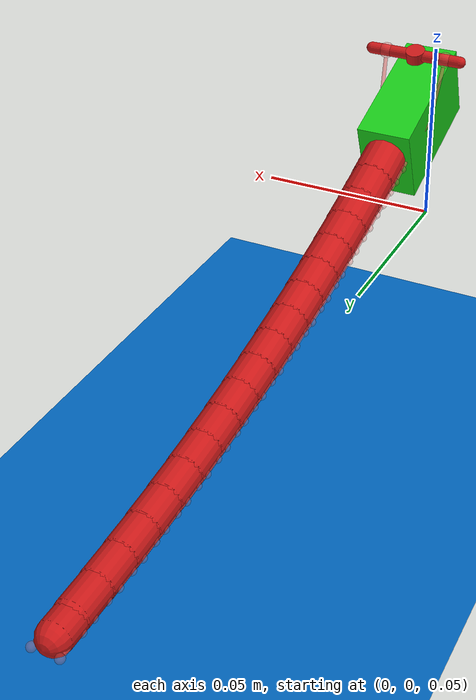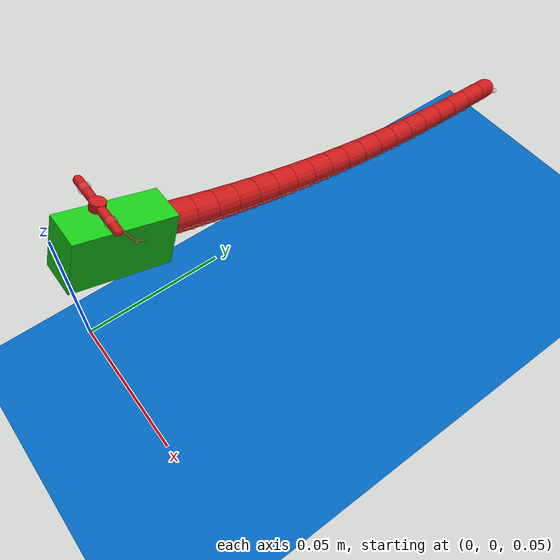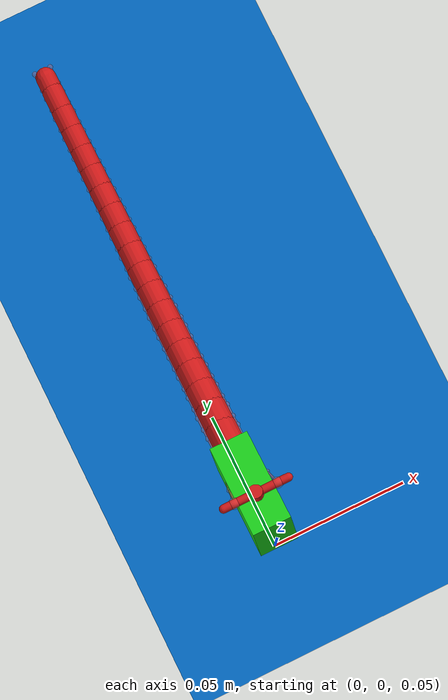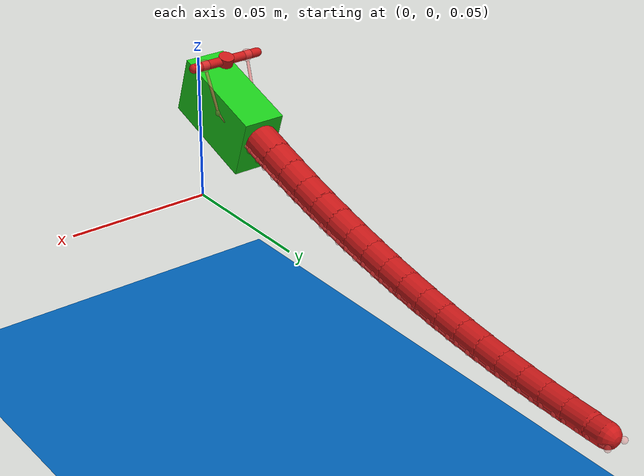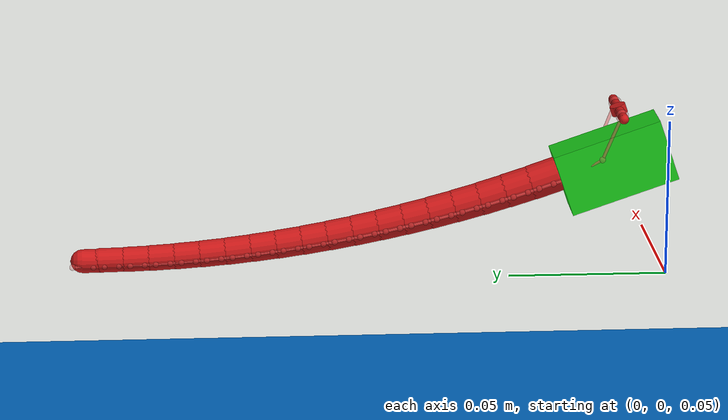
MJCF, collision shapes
<mujoco>

    <include file="basic_scene.xml" />

    <include file="tail_assets/tail_stl_assets.xml"/>

    <worldbody>
        <light diffuse=".5 .5 .5" pos="0 0 3" dir="0 0 -1"/>
        <geom type="plane" size="0 0 0.03" material="matplane"/>
        <camera name="body_cam" mode="fixed" pos="0.3 -0.01 0.1" euler="90 90 0"/>
        <body pos="0 0 0.1">
            <include file="tail_assets/tail.xml"/>
        </body>
    </worldbody>

    <include file="tail_assets/tail_tendon.xml"/>

    <include file="tail_assets/tail_sensor_actuator.xml"/>
</mujoco>

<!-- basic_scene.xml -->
<mujoco>
    <compiler angle="degree"/>

    <asset>
        <texture type="skybox" builtin="gradient" rgb1="1 1 1" rgb2=".6 .8 1" width="256" height="256"/>
        <texture name="texplane" type="2d" builtin="checker" rgb1=".2 .3 .4" rgb2=".1 0.15 0.2" width="512" height="512" mark="cross" markrgb=".8 .8 .8"/>

        <material name="matplane" reflectance="0" texture="texplane" texrepeat="2 2" texuniform="true"/>
    </asset>

    <option timestep="0.002" o_solimp="0.9 0.95 0.001 0.1 2" o_solref="0.008 2" cone="elliptic"
        impratio="3.0" noslip_iterations="5" noslip_tolerance="1e-8">
        <flag override="enable"/>
    </option>

    <default>
        <geom type="box" rgba="0 0.4 0.74 1.0"/>
    </default>
</mujoco>

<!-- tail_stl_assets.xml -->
<mujoco>
    <asset>
        <mesh name="main_tail" refquat="1 0 1 0" scale="0.001 0.001 0.001" file="stl-meshes/tail/tail_main.stl"/>
        <mesh name="t1_tail" refquat="1 0 1 0" scale="0.001 0.001 0.001" file="stl-meshes/tail/t1.stl"/>
        <mesh name="t2_tail" refquat="1 0 1 0" scale="0.001 0.001 0.001" file="stl-meshes/tail/t2.stl"/>
        <mesh name="t3_tail" refquat="1 0 1 0" scale="0.001 0.001 0.001" file="stl-meshes/tail/t3.stl"/>
        <mesh name="t4_tail" refquat="1 0 1 0" scale="0.001 0.001 0.001" file="stl-meshes/tail/t4.stl"/>
        <mesh name="t5_tail" refquat="1 0 1 0" scale="0.001 0.001 0.001" file="stl-meshes/tail/t5.stl"/>
        <mesh name="t6_tail" refquat="1 0 1 0" scale="0.001 0.001 0.001" file="stl-meshes/tail/t6.stl"/>
        <mesh name="t7_tail" refquat="1 0 1 0" scale="0.001 0.001 0.001" file="stl-meshes/tail/t7.stl"/>
        <mesh name="t8_tail" refquat="1 0 1 0" scale="0.001 0.001 0.001" file="stl-meshes/tail/t8.stl"/>
        <mesh name="t9_tail" refquat="1 0 1 0" scale="0.001 0.001 0.001" file="stl-meshes/tail/t9.stl"/>
        <mesh name="t10_tail" refquat="1 0 1 0" scale="0.001 0.001 0.001" file="stl-meshes/tail/t10.stl"/>
        <mesh name="t11_tail" refquat="1 0 1 0" scale="0.001 0.001 0.001" file="stl-meshes/tail/t11.stl"/>
        <mesh name="t12_tail" refquat="1 0 1 0" scale="0.001 0.001 0.001" file="stl-meshes/tail/t12.stl"/>
        <mesh name="t13_tail" refquat="1 0 1 0" scale="0.001 0.001 0.001" file="stl-meshes/tail/t13.stl"/>
        <mesh name="t14_tail" refquat="1 0 1 0" scale="0.001 0.001 0.001" file="stl-meshes/tail/t14.stl"/>
        <mesh name="t15_tail" refquat="1 0 1 0" scale="0.001 0.001 0.001" file="stl-meshes/tail/t15.stl"/>
        <mesh name="t16_tail" refquat="1 0 1 0" scale="0.001 0.001 0.001" file="stl-meshes/tail/t16.stl"/>
        <mesh name="t17_tail" refquat="1 0 1 0" scale="0.001 0.001 0.001" file="stl-meshes/tail/t17.stl"/>
        <mesh name="t18_tail" refquat="1 0 1 0" scale="0.001 0.001 0.001" file="stl-meshes/tail/t18.stl"/>
        <mesh name="t19_tail" refquat="1 0 1 0" scale="0.001 0.001 0.001" file="stl-meshes/tail/t19.stl"/>
        <mesh name="servo_tail" refquat="1 0 1 0" scale="0.001 0.001 0.001" file="stl-meshes/tail/servo_horn_tail.stl"/>
    </asset>
</mujoco>

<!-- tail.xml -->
<mujoco>
    <body name="tail">
        <geom name="tail_main" type="box" mass="0.009" euler="-19 0 0" size="0.007 0.0175 0.01" pos="0 0.0175 -0.013" rgba=".1 .8 .1 0"/>
        <geom name="visual_tail_main" type="mesh" mesh="main_tail" mass="0" contype="0" euler="90 90 0" conaffinity="0" rgba=".95 .95 .95 1"/>
        <site name="st_1" pos="0.007 0.022 -0.01" size="0.001" rgba="1 .4 .4 0.3"/>
        <site name="st_2" pos="-0.007 0.022 -0.01" size="0.001" rgba="1 .4 .4 0.3"/>
        <site name="st_3" pos="0.0055 0.0332 -0.0168" size="0.001" rgba="1 .4 .4 0.3"/>
        <site name="st_4" pos="-0.0055 0.0332 -0.0168" size="0.001" rgba="1 .4 .4 0.3"/>

        <body name="tail_t1" pos="0 0.03525 -0.0174">
            <geom name="tail_t1" type="capsule" mass="0.0005" fromto="0 0 0.001 0 0.008 -0.00175" size="0.0055" rgba=".8 .1 .1 0"/>
            <geom name="tail_visual_t1" type="mesh" mesh="t1_tail" mass="0" contype="0" euler="90 90 0" conaffinity="0" rgba=".95 .95 .95 1"/>
            <joint name="tail_t1" type="hinge" axis="0 0 1" damping="0.01" stiffness="1.2" armature="0.00065" limited="true" range="-90 90" ref="0"/>
            <site name="st_5" pos="0.0055 0.00175 -0.0006" size="0.001" rgba="1 .4 .4 0.3"/>
            <site name="st_6" pos="-0.0055 0.00175 -0.0006" size="0.001" rgba="1 .4 .4 0.3"/>
            <site name="st_7" pos="0.0055 0.00625 -0.0021" size="0.001" rgba="1 .4 .4 0.3"/>
            <site name="st_8" pos="-0.0055 0.00625 -0.0021" size="0.001" rgba="1 .4 .4 0.3"/>

            <body name="tail_t2" pos="0 0.008 -0.00275">
                <geom name="tail_t2" type="capsule" mass="0.0005" fromto="0 0 0.001 0 0.008 -0.00155" size="0.0054" rgba=".8 .1 .1 0"/>
                <geom name="tail_visual_t2" type="mesh" mesh="t2_tail" mass="0" contype="0" euler="90 90 0" conaffinity="0" rgba=".95 .95 .95 1"/>
                <joint name="tail_t2" type="hinge" axis="0 0 1" damping="0.01" stiffness="1.2" armature="0.00065" limited="true" range="-90 90" ref="0"/>
                <site name="st_9" pos="0.00545 0.00175 -0.00055" size="0.001" rgba="1 .4 .4 0.3"/>
                <site name="st_10" pos="-0.00545 0.00175 -0.00055" size="0.001" rgba="1 .4 .4 0.3"/>
                <site name="st_11" pos="0.00545 0.00625 -0.00199" size="0.001" rgba="1 .4 .4 0.3"/>
                <site name="st_12" pos="-0.00545 0.00625 -0.00199" size="0.001" rgba="1 .4 .4 0.3"/>

                <body name="tail_t3" pos="0 0.008 -0.00255">
                    <geom name="tail_t3" type="capsule" mass="0.0005" fromto="0 0 0.001 0 0.008 -0.00145" size="0.0053" rgba=".8 .1 .1 0"/>
                    <geom name="tail_visual_t3" type="mesh" mesh="t3_tail" mass="0" contype="0" euler="90 90 0" conaffinity="0" rgba=".95 .95 .95 1"/>
                    <joint name="tail_t3" type="hinge" axis="0 0 1" damping="0.01" stiffness="1.2" armature="0.00065" limited="true" range="-90 90" ref="0"/>
                    <site name="st_13" pos="0.0052 0.00175 -0.00053" size="0.001" rgba="1 .4 .4 0.3"/>
                    <site name="st_14" pos="-0.0052 0.00175 -0.00053" size="0.001" rgba="1 .4 .4 0.3"/>
                    <site name="st_15" pos="0.0052 0.00625 -0.00191" size="0.001" rgba="1 .4 .4 0.3"/>
                    <site name="st_16" pos="-0.0052 0.00625 -0.00191" size="0.001" rgba="1 .4 .4 0.3"/>

                    <body name="tail_t4" pos="0 0.008 -0.00245">
                        <geom name="tail_t4" type="capsule" mass="0.0005" fromto="0 0 0.001 0 0.008 -0.00125" size="0.0052" rgba=".8 .1 .1 0"/>
                        <geom name="tail_visual_t4" type="mesh" mesh="t4_tail" mass="0" contype="0" euler="90 90 0" conaffinity="0" rgba=".95 .95 .95 1"/>
                        <joint name="tail_t4" type="hinge" axis="0 0 1" damping="0.01" stiffness="1.2" armature="0.00065" limited="true" range="-90 90" ref="0"/>
                        <site name="st_17" pos="0.00505 0.00175 -0.00049" size="0.001" rgba="1 .4 .4 0.3"/>
                        <site name="st_18" pos="-0.00505 0.00175 -0.00049" size="0.001" rgba="1 .4 .4 0.3"/>
                        <site name="st_19" pos="0.00505 0.00625 -0.00175" size="0.001" rgba="1 .4 .4 0.3"/>
                        <site name="st_20" pos="-0.00505 0.00625 -0.00175" size="0.001" rgba="1 .4 .4 0.3"/>

                        <body name="tail_t5" pos="0 0.008 -0.00225">
                            <geom name="tail_t5" type="capsule" mass="0.0005" fromto="0 0 0.001 0 0.008 -0.0011" size="0.0051" rgba=".8 .1 .1 0"/>
                            <geom name="tail_visual_t5" type="mesh" mesh="t5_tail" mass="0" contype="0" euler="90 90 0" conaffinity="0" rgba=".95 .95 .95 1"/>
                            <joint name="tail_t5" type="hinge" axis="0 0 1" damping="0.01" stiffness="1.2" armature="0.00065" limited="true" range="-90 90" ref="0"/>
                            <site name="st_21" pos="0.00495 0.00175 -0.00046" size="0.001" rgba="1 .4 .4 0.3"/>
                            <site name="st_22" pos="-0.00495 0.00175 -0.00046" size="0.001" rgba="1 .4 .4 0.3"/>
                            <site name="st_23" pos="0.00495 0.00625 -0.00164" size="0.001" rgba="1 .4 .4 0.3"/>
                            <site name="st_24" pos="-0.00495 0.00625 -0.00164" size="0.001" rgba="1 .4 .4 0.3"/>

                            <body name="tail_t6" pos="0 0.008 -0.0021">
                                <geom name="tail_t6" type="capsule" mass="0.0005" fromto="0 0 0.001 0 0.008 -0.00095" size="0.005" rgba=".8 .1 .1 0"/>
                                <geom name="tail_visual_t6" type="mesh" mesh="t6_tail" mass="0" contype="0" euler="90 90 0" conaffinity="0" rgba=".95 .95 .95 1"/>
                                <joint name="tail_t6" type="hinge" axis="0 0 1" damping="0.01" stiffness="1.2" armature="0.00065" limited="true" range="-90 90" ref="0"/>
                                <site name="st_25" pos="0.0049 0.00175 -0.00043" size="0.001" rgba="1 .4 .4 0.3"/>
                                <site name="st_26" pos="-0.0049 0.00175 -0.00043" size="0.001" rgba="1 .4 .4 0.3"/>
                                <site name="st_27" pos="0.0049 0.00625 -0.00152" size="0.001" rgba="1 .4 .4 0.3"/>
                                <site name="st_28" pos="-0.0049 0.00625 -0.00152" size="0.001" rgba="1 .4 .4 0.3"/>

                                <body name="tail_t7" pos="0 0.008 -0.00195">
                                    <geom name="tail_t7" type="capsule" mass="0.0005" fromto="0 0 0.001 0 0.008 -0.0008" size="0.0049" rgba=".8 .1 .1 0"/>
                                    <geom name="tail_visual_t7" type="mesh" mesh="t7_tail" mass="0" contype="0" euler="90 90 0" conaffinity="0" rgba=".95 .95 .95 1"/>
                                    <joint name="tail_t7" type="hinge" axis="0 0 1" damping="0.01" stiffness="1.2" armature="0.00065" limited="true" range="-90 90" ref="0"/>
                                    <site name="st_29" pos="0.0048 0.00175 -0.00039" size="0.001" rgba="1 .4 .4 0.3"/>
                                    <site name="st_30" pos="-0.0048 0.00175 -0.00039" size="0.001" rgba="1 .4 .4 0.3"/>
                                    <site name="st_31" pos="0.0048 0.00625 -0.00141" size="0.001" rgba="1 .4 .4 0.3"/>
                                    <site name="st_32" pos="-0.0048 0.00625 -0.00141" size="0.001" rgba="1 .4 .4 0.3"/>

                                    <body name="tail_t8" pos="0 0.008 -0.0018">
                                        <geom name="tail_t8" type="capsule" mass="0.0005" fromto="0 0 0.001 0 0.008 -0.00065" size="0.0048" rgba=".8 .1 .1 0"/>
                                        <geom name="tail_visual_t8" type="mesh" mesh="t8_tail" mass="0" contype="0" euler="90 90 0" conaffinity="0" rgba=".95 .95 .95 1"/>
                                        <joint name="tail_t8" type="hinge" axis="0 0 1" damping="0.01" stiffness="1.2" armature="0.00065" limited="true" range="-90 90" ref="0"/>
                                        <site name="st_33" pos="0.0046 0.00175 -0.00036" size="0.001" rgba="1 .4 .4 0.3"/>
                                        <site name="st_34" pos="-0.0046 0.00175 -0.00036" size="0.001" rgba="1 .4 .4 0.3"/>
                                        <site name="st_35" pos="0.0046 0.00625 -0.00129" size="0.001" rgba="1 .4 .4 0.3"/>
                                        <site name="st_36" pos="-0.0046 0.00625 -0.00129" size="0.001" rgba="1 .4 .4 0.3"/>

                                        <body name="tail_t9" pos="0 0.008 -0.00165">
                                            <geom name="tail_t9" type="capsule" mass="0.0005" fromto="0 0 0.001 0 0.008 -0.0005" size="0.0047" rgba=".8 .1 .1 0"/>
                                            <geom name="tail_visual_t9" type="mesh" mesh="t9_tail" mass="0" contype="0" euler="90 90 0" conaffinity="0" rgba=".95 .95 .95 1"/>
                                            <joint name="tail_t9" type="hinge" axis="0 0 1" damping="0.01" stiffness="1.2" armature="0.00065" limited="true" range="-90 90" ref="0"/>
                                            <site name="st_37" pos="0.0044 0.00175 -0.00033" size="0.001" rgba="1 .4 .4 0.3"/>
                                            <site name="st_38" pos="-0.0044 0.00175 -0.00033" size="0.001" rgba="1 .4 .4 0.3"/>
                                            <site name="st_39" pos="0.0044 0.00625 -0.00117" size="0.001" rgba="1 .4 .4 0.3"/>
                                            <site name="st_40" pos="-0.0044 0.00625 -0.00117" size="0.001" rgba="1 .4 .4 0.3"/>

                                            <body name="tail_t10" pos="0 0.008 -0.0015">
                                                <geom name="tail_t10" type="capsule" mass="0.0005" fromto="0 0 0.001 0 0.008 -0.00035" size="0.0046" rgba=".8 .1 .1 0"/>
                                                <geom name="tail_visual_t10" type="mesh" mesh="t10_tail" mass="0" contype="0" euler="90 90 0" conaffinity="0" rgba=".95 .95 .95 1"/>
                                                <joint name="tail_t10" type="hinge" axis="0 0 1" damping="0.01" stiffness="1.2" armature="0.00065" limited="true" range="-90 90" ref="0"/>
                                                <site name="st_41" pos="0.0042 0.00175 -0.000295" size="0.001" rgba="1 .4 .4 0.3"/>
                                                <site name="st_42" pos="-0.0042 0.00175 -0.000295" size="0.001" rgba="1 .4 .4 0.3"/>
                                                <site name="st_43" pos="0.0042 0.00625 -0.00105" size="0.001" rgba="1 .4 .4 0.3"/>
                                                <site name="st_44" pos="-0.0042 0.00625 -0.00105" size="0.001" rgba="1 .4 .4 0.3"/>

                                                <body name="tail_t11" pos="0 0.008 -0.00135">
                                                    <geom name="tail_t11" type="capsule" mass="0.0005" fromto="0 0 0.001 0 0.008 -0.0002" size="0.0045" rgba=".8 .1 .1 0"/>
                                                    <geom name="tail_visual_t11" type="mesh" mesh="t11_tail" mass="0" contype="0" euler="90 90 0" conaffinity="0" rgba=".95 .95 .95 1"/>
                                                    <joint name="tail_t11" type="hinge" axis="0 0 1" damping="0.01" stiffness="1.2" armature="0.00065" limited="true" range="-90 90" ref="0"/>
                                                    <site name="st_45" pos="0.00405 0.00175 -0.00026" size="0.001" rgba="1 .4 .4 0.3"/>
                                                    <site name="st_46" pos="-0.00405 0.00175 -0.00026" size="0.001" rgba="1 .4 .4 0.3"/>
                                                    <site name="st_47" pos="0.00405 0.00625 -0.00094" size="0.001" rgba="1 .4 .4 0.3"/>
                                                    <site name="st_48" pos="-0.00405 0.00625 -0.00094" size="0.001" rgba="1 .4 .4 0.3"/>

                                                    <body name="tail_t12" pos="0 0.008 -0.0012">
                                                        <geom name="tail_t12" type="capsule" mass="0.0005" fromto="0 0 0.001 0 0.008 -0.00005" size="0.0044" rgba=".8 .1 .1 0"/>
                                                        <geom name="tail_visual_t12" type="mesh" mesh="t12_tail" mass="0" contype="0" euler="90 90 0" conaffinity="0" rgba=".95 .95 .95 1"/>
                                                        <joint name="tail_t12" type="hinge" axis="0 0 1" damping="0.01" stiffness="1.2" armature="0.00065" limited="true" range="-90 90" ref="0"/>
                                                        <site name="st_49" pos="0.0040 0.00175 -0.00023" size="0.001" rgba="1 .4 .4 0.3"/>
                                                        <site name="st_50" pos="-0.0040 0.00175 -0.00023" size="0.001" rgba="1 .4 .4 0.3"/>
                                                        <site name="st_51" pos="0.0040 0.00625 -0.00082" size="0.001" rgba="1 .4 .4 0.3"/>
                                                        <site name="st_52" pos="-0.0040 0.00625 -0.00082" size="0.001" rgba="1 .4 .4 0.3"/>

                                                        <body name="tail_t13" pos="0 0.008 -0.00105">
                                                            <geom name="tail_t13" type="capsule" mass="0.0005" fromto="0 0 0.001 0 0.008 0.0001" size="0.0043" rgba=".8 .1 .1 0"/>
                                                            <geom name="tail_visual_t13" type="mesh" mesh="t13_tail" mass="0" contype="0" euler="90 90 0" conaffinity="0" rgba=".95 .95 .95 1"/>
                                                            <joint name="tail_t13" type="hinge" axis="0 0 1" damping="0.01" stiffness="1.2" armature="0.00065" limited="true" range="-90 90" ref="0"/>
                                                            <site name="st_53" pos="0.0039 0.00175 -0.000196" size="0.001" rgba="1 .4 .4 0.3"/>
                                                            <site name="st_54" pos="-0.0039 0.00175 -0.000196" size="0.001" rgba="1 .4 .4 0.3"/>
                                                            <site name="st_55" pos="0.0039 0.00625 -0.00070" size="0.001" rgba="1 .4 .4 0.3"/>
                                                            <site name="st_56" pos="-0.0039 0.00625 -0.00070" size="0.001" rgba="1 .4 .4 0.3"/>

                                                            <body name="tail_t14" pos="0 0.008 -0.0009">
                                                                <geom name="tail_t14" type="capsule" mass="0.0005" fromto="0 0 0.001 0 0.008 0.00025" size="0.0042" rgba=".8 .1 .1 0"/>
                                                                <geom name="tail_visual_t14" type="mesh" mesh="t14_tail" mass="0" contype="0" euler="90 90 0" conaffinity="0" rgba=".95 .95 .95 1"/>
                                                                <joint name="tail_t14" type="hinge" axis="0 0 1" damping="0.01" stiffness="1.2" armature="0.00065" limited="true" range="-90 90" ref="0"/>
                                                                <site name="st_57" pos="0.00375 0.00175 -0.000164" size="0.001" rgba="1 .4 .4 0.3"/>
                                                                <site name="st_58" pos="-0.00375 0.00175 -0.000164" size="0.001" rgba="1 .4 .4 0.3"/>
                                                                <site name="st_59" pos="0.00375 0.00625 -0.000585" size="0.001" rgba="1 .4 .4 0.3"/>
                                                                <site name="st_60" pos="-0.00375 0.00625 -0.000585" size="0.001" rgba="1 .4 .4 0.3"/>

                                                                <body name="tail_t15" pos="0 0.008 -0.00075">
                                                                    <geom name="tail_t15" type="capsule" mass="0.0005" fromto="0 0 0.001 0 0.008 0.0004" size="0.0041" rgba=".8 .1 .1 0"/>
                                                                    <geom name="tail_visual_t15" type="mesh" mesh="t15_tail" mass="0" contype="0" euler="90 90 0" conaffinity="0" rgba=".95 .95 .95 1"/>
                                                                    <joint name="tail_t15" type="hinge" axis="0 0 1" damping="0.01" stiffness="1.2" armature="0.00065" limited="true" range="-90 90" ref="0"/>
                                                                    <site name="st_61" pos="0.0036 0.00175 -0.00013" size="0.001" rgba="1 .4 .4 0.3"/>
                                                                    <site name="st_62" pos="-0.0036 0.00175 -0.00013" size="0.001" rgba="1 .4 .4 0.3"/>
                                                                    <site name="st_63" pos="0.0036 0.00625 -0.00047" size="0.001" rgba="1 .4 .4 0.3"/>
                                                                    <site name="st_64" pos="-0.0036 0.00625 -0.00047" size="0.001" rgba="1 .4 .4 0.3"/>

                                                                    <body name="tail_t16" pos="0 0.008 -0.0006">
                                                                        <geom name="tail_t16" type="capsule" mass="0.0005" fromto="0 0 0.001 0 0.008 0.00055" size="0.004" rgba=".8 .1 .1 0"/>
                                                                        <geom name="tail_visual_t16" type="mesh" mesh="t16_tail" mass="0" contype="0" euler="90 90 0" conaffinity="0" rgba=".95 .95 .95 1"/>
                                                                        <joint name="tail_t16" type="hinge" axis="0 0 1" damping="0.01" stiffness="1.2" armature="0.00065" limited="true" range="-90 90" ref="0"/>
                                                                        <site name="st_65" pos="0.0035 0.00175 -0.0001" size="0.001" rgba="1 .4 .4 0.3"/>
                                                                        <site name="st_66" pos="-0.0035 0.00175 -0.0001" size="0.001" rgba="1 .4 .4 0.3"/>
                                                                        <site name="st_67" pos="0.0035 0.00625 -0.00035" size="0.001" rgba="1 .4 .4 0.3"/>
                                                                        <site name="st_68" pos="-0.0035 0.00625 -0.00035" size="0.001" rgba="1 .4 .4 0.3"/>

                                                                        <body name="tail_t17" pos="0 0.008 -0.00045">
                                                                            <geom name="tail_t17" type="capsule" mass="0.0005" fromto="0 0 0.001 0 0.008 0.0007" size="0.0039" rgba=".8 .1 .1 0"/>
                                                                            <geom name="tail_visual_t17" type="mesh" mesh="t17_tail" mass="0" contype="0" euler="90 90 0" conaffinity="0" rgba=".95 .95 .95 1"/>
                                                                            <joint name="tail_t17" type="hinge" axis="0 0 1" damping="0.01" stiffness="1.2" armature="0.00065" limited="true" range="-90 90" ref="0"/>
                                                                            <site name="st_69" pos="0.00335 0.00175 -0.000065" size="0.001" rgba="1 .4 .4 0.3"/>
                                                                            <site name="st_70" pos="-0.00335 0.00175 -0.000065" size="0.001" rgba="1 .4 .4 0.3"/>
                                                                            <site name="st_71" pos="0.00335 0.00625 -0.00023" size="0.001" rgba="1 .4 .4 0.3"/>
                                                                            <site name="st_72" pos="-0.00335 0.00625 -0.00023" size="0.001" rgba="1 .4 .4 0.3"/>

                                                                            <body name="tail_t18" pos="0 0.008 -0.0003">
                                                                                <geom name="tail_t18" type="capsule" mass="0.0005" fromto="0 0 0.001 0 0.008 0.00085" size="0.0038" rgba=".8 .1 .1 0"/>
                                                                                <geom name="tail_visual_t18" type="mesh" mesh="t18_tail" mass="0" contype="0" euler="90 90 0" conaffinity="0" rgba=".95 .95 .95 1"/>
                                                                                <joint name="tail_t18" type="hinge" axis="0 0 1" damping="0.01" stiffness="1.2" armature="0.00065" limited="true" range="-90 90" ref="0"/>
                                                                                <site name="st_73" pos="0.0031 0.00175 -0.000032" size="0.001" rgba="1 .4 .4 0.3"/>
                                                                                <site name="st_74" pos="-0.0031 0.00175 -0.000032" size="0.001" rgba="1 .4 .4 0.3"/>
                                                                                <site name="st_75" pos="0.0031 0.00625 -0.00012" size="0.001" rgba="1 .4 .4 0.3"/>
                                                                                <site name="st_76" pos="-0.0031 0.00625 -0.00012" size="0.001" rgba="1 .4 .4 0.3"/>

                                                                                <body name="tail_t19" pos="0 0.008 -0.0003">
                                                                                    <geom name="tail_t19" type="capsule" mass="0.0005" fromto="0 0 0.001 0 0.00525 0.001" size="0.0037" rgba=".8 .1 .1 0"/>
                                                                                    <geom name="tail_visual_t19" type="mesh" mesh="t19_tail" mass="0" contype="0" euler="90 90 0" conaffinity="0" rgba=".95 .95 .95 1"/>
                                                                                    <joint name="tail_t19" type="hinge" axis="0 0 1" damping="0.01" stiffness="1.2" armature="0.00065" limited="true" range="-90 90" ref="0"/>
                                                                                    <site name="st_77" pos="0.003 0.00175 0" size="0.001" rgba="1 .4 .4 0.3"/>
                                                                                    <site name="st_78" pos="-0.003 0.00175 0" size="0.001" rgba="1 .4 .4 0.3"/>
                                                                                    <site name="st_79" pos="0.003 0.00825 0" size="0.001" rgba="1 .4 .4 0.3"/>
                                                                                    <site name="st_80" pos="-0.003 0.00825 0" size="0.001" rgba="1 .4 .4 0.3"/>
                                                                                </body>
                                                                            </body>
                                                                        </body>
                                                                    </body>
                                                                </body>
                                                            </body>
                                                        </body>
                                                    </body>
                                                </body>
                                            </body>
                                        </body>
                                    </body>
                                </body>
                            </body>
                        </body>
                    </body>
                </body>
            </body>
        </body>

        <body name="servo_tail" pos="0 0.0152 0.001" euler="-19 0 0">
                <geom name="m1_tail" type="cylinder" mass="0.001" fromto="0 0 .002 0 0 0.005" size="0.0025" rgba=".8 .1 .1 0" />
                <geom name="m1_tail1" type="capsule" mass="0.001" fromto="0.012 0 0.0035 -0.012 0 0.0035" size="0.0015" rgba=".8 .1 .1 0" />
                <geom name="visual_servo_tail" type="mesh" mesh="servo_tail" pos="0 0 0.001" mass="0" contype="0" euler="90 90 0" conaffinity="0" rgba="1 .4 .4 1"/>
                <joint name="m1_tail" pos="0 0 0" type="hinge" axis="0 0 1" armature="0.00065" damping="0.01" limited="true" range="-180 180" ref="0"/>
                <site name="servo_tail_1" pos="0.008 0 0.0035" size="0.002" rgba="1 .4 .4 0.3"/>
                <site name="servo_tail_2" pos="-0.008 0 0.0035" size="0.002" rgba="1 .4 .4 0.3"/>
        </body>
    </body>
</mujoco>

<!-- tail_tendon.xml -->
<mujoco>
    <tendon>
        <spatial name="m1_tail_tendon1" limited="true" range="0 0.1863" width="0.0005" rgba="1 .4 .4 0.5">
            <site site="servo_tail_1"/>
            <site site="st_1"/>
            <site site="st_3"/>
            <site site="st_5"/>
            <site site="st_7"/>
            <site site="st_9"/>
            <site site="st_11"/>
            <site site="st_13"/>
            <site site="st_15"/>
            <site site="st_17"/>
            <site site="st_19"/>
            <site site="st_21"/>
            <site site="st_23"/>
            <site site="st_25"/>
            <site site="st_27"/>
            <site site="st_29"/>
            <site site="st_31"/>
            <site site="st_33"/>
            <site site="st_35"/>
            <site site="st_37"/>
            <site site="st_39"/>
            <site site="st_41"/>
            <site site="st_43"/>
            <site site="st_45"/>
            <site site="st_47"/>
            <site site="st_49"/>
            <site site="st_51"/>
            <site site="st_53"/>
            <site site="st_55"/>
            <site site="st_57"/>
            <site site="st_59"/>
            <site site="st_61"/>
            <site site="st_63"/>
            <site site="st_65"/>
            <site site="st_67"/>
            <site site="st_69"/>
            <site site="st_71"/>
            <site site="st_73"/>
            <site site="st_75"/>
            <site site="st_77"/>
            <site site="st_79"/>
        </spatial>

        <spatial name="m1_tail_tendon2" limited="true" range="0 0.1863" width="0.0005" rgba="1 .4 .4 0.5">
            <site site="servo_tail_2"/>
            <site site="st_2"/>
            <site site="st_4"/>
            <site site="st_6"/>
            <site site="st_8"/>
            <site site="st_10"/>
            <site site="st_12"/>
            <site site="st_14"/>
            <site site="st_16"/>
            <site site="st_18"/>
            <site site="st_20"/>
            <site site="st_22"/>
            <site site="st_24"/>
            <site site="st_26"/>
            <site site="st_28"/>
            <site site="st_30"/>
            <site site="st_32"/>
            <site site="st_34"/>
            <site site="st_36"/>
            <site site="st_38"/>
            <site site="st_40"/>
            <site site="st_42"/>
            <site site="st_44"/>
            <site site="st_46"/>
            <site site="st_48"/>
            <site site="st_50"/>
            <site site="st_52"/>
            <site site="st_54"/>
            <site site="st_56"/>
            <site site="st_58"/>
            <site site="st_60"/>
            <site site="st_62"/>
            <site site="st_64"/>
            <site site="st_66"/>
            <site site="st_68"/>
            <site site="st_70"/>
            <site site="st_72"/>
            <site site="st_74"/>
            <site site="st_76"/>
            <site site="st_78"/>
            <site site="st_80"/>
        </spatial>
    </tendon>
</mujoco>

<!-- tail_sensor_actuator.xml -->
<mujoco>
    <sensor>
        <jointpos name="m1_tail" joint="m1_tail"/>
    </sensor>

    <actuator>
        <position name="m1_tail" gear="1" ctrllimited="true" ctrlrange="-1.57 1.57"  forcelimited="true"  forcerange="-.6 .6" joint="m1_tail" kp="300"/>
    </actuator>
</mujoco>
